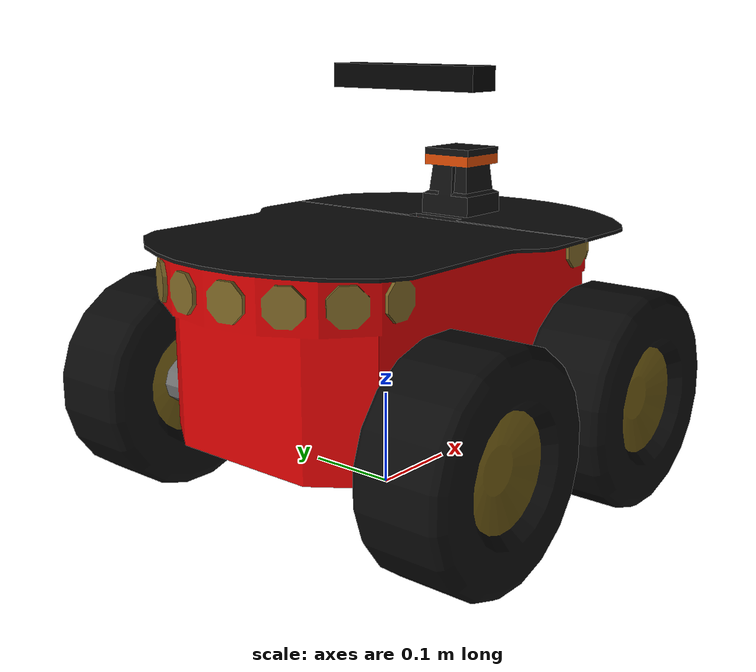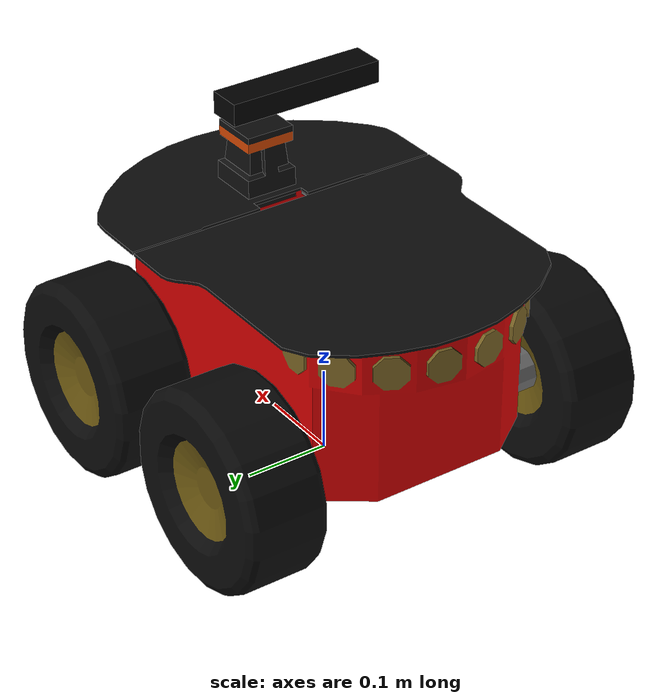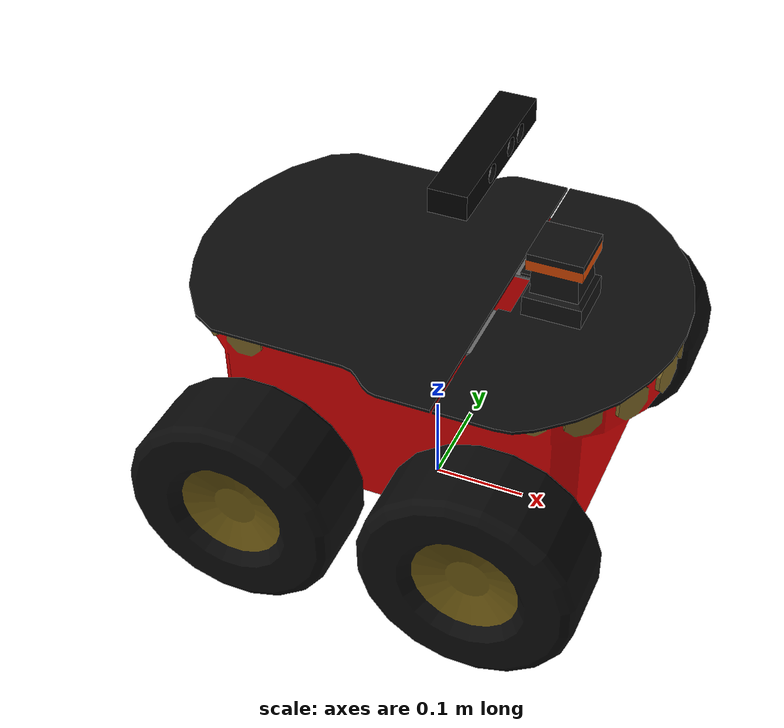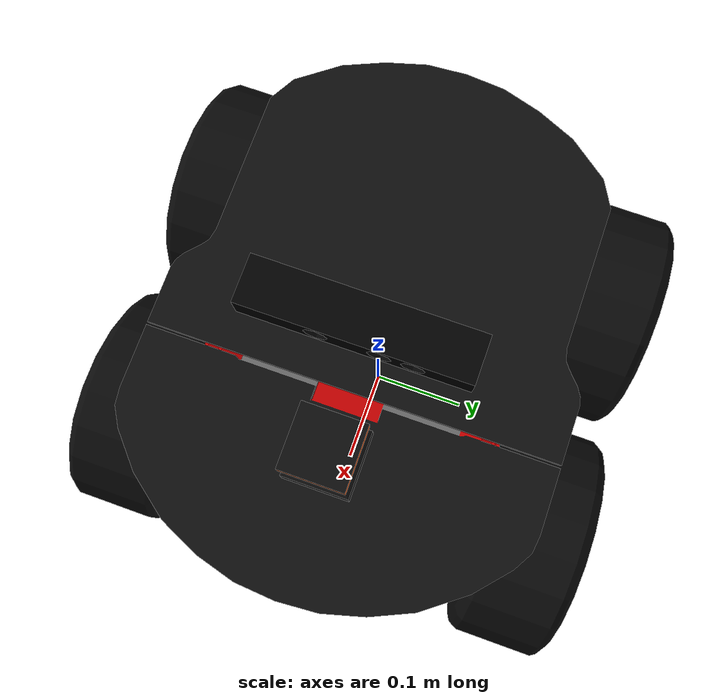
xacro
<?xml version="1.0"?>

<robot
  xmlns:sensor="http://playerstage.sourceforge.net/gazebo/xmlschema/#sensor"
  xmlns:controller="http://playerstage.sourceforge.net/gazebo/xmlschema/#controller"
  xmlns:interface="http://playerstage.sourceforge.net/gazebo/xmlschema/#interface"
  xmlns:xacro="http://ros.org/wiki/xacro"
  name="pioneer3at">

  <xacro:include filename="$(find p3at_description)/urdf/pioneer3at_body.xacro"/>
  <xacro:include filename="$(find p3at_description)/urdf/hokuyo_utm30lx.urdf.xacro"/>
  <xacro:include filename="$(find p3at_description)/urdf/asus_camera.urdf.xacro" />

  <xacro:hokuyo_utm30lx name="hokuyo" parent="base_link" ros_topic="hokuyo" update_rate="30" ray_count="1040" min_angle="130" max_angle="-130" >
    <origin xyz="0.13 0 0.32" rpy="0 0 0"/>
  </xacro:hokuyo_utm30lx>

  <xacro:asus_camera name="camera" parent="base_link">
	                <origin xyz="0.065 0.0 0.43" rpy="0 0 0"/>
  </xacro:asus_camera>
</robot>

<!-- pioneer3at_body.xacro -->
<robot xmlns:sensor="http://playerstage.sourceforge.net/gazebo/xmlschema/#sensor"
  xmlns:controller="http://playerstage.sourceforge.net/gazebo/xmlschema/#controller"
  xmlns:interface="http://playerstage.sourceforge.net/gazebo/xmlschema/#interface"
  xmlns:xacro="http://ros.org/wiki/xacro"
  >

  <!-- Chassis -->
  <link name="base_link">
    <inertial>
      <mass value="14.0"/>
      <origin xyz="0 0 0.177"/>
      <inertia ixx="0.14711667" ixy="0.0" ixz="0.0"
        iyy="0.334951167" iyz="0.0"
        izz="0.3978345"/>
    </inertial>
    <visual name="base_visual">
      <origin xyz="0 0 0.18" rpy="0 0 0"/>
      <geometry name="pioneer_geom">
        <mesh filename="package://p3at_description/meshes/p3at_meshes/chassis.dae"/>
      </geometry>
    </visual>
    <collision>
      <origin xyz="0 0 0.18" rpy="0 0 0"/>
      <geometry>
        <box size="0.501 0.3 0.19"/>
      </geometry>
    </collision>
  </link>

  <link name="p3at_front_left_wheel">
    <inertial>
      <mass value="1.5"/>
      <origin xyz="0 0 0"/>
      <inertia ixx="0.005240625" ixy="0" ixz="0"
        iyy="0.005240625" iyz="0" izz="0.009075"/>
    </inertial>
    <visual name="visual">
      <origin xyz="0 0 0" rpy="0 0 0"/>
      <geometry name="geom">
        <mesh filename="package://p3at_description/meshes/p3at_meshes/wheel.dae"/>
      </geometry>
    </visual>
    <collision>
      <origin xyz="0 0 0" rpy="0 0 0"/>
      <geometry>
        <cylinder radius="0.110" length="0.075"/>
      </geometry>
    </collision>
  </link>

  <joint name="p3at_front_left_wheel_joint" type="continuous">
    <axis xyz="0 0 -1"/>
    <limit effort="100" velocity="100" />
    <joint_properties damping="0.7"/>
    <origin xyz="0.125 0.2010 0.11" rpy="1.5707 0 0"/>
    <parent link="base_link"/>
    <child link="p3at_front_left_wheel"/>
  </joint>

  <link name="p3at_front_right_wheel">
    <inertial>
      <mass value="1.5"/>
      <origin xyz="0 0 0"/>
      <inertia ixx="0.005240625" ixy="0" ixz="0"
        iyy="0.005240625" iyz="0" izz="0.009075"/>
    </inertial>
    <visual name="visual">
      <origin xyz="0 0 0" rpy="0 0 0"/>
      <geometry name="geom">
        <mesh filename="package://p3at_description/meshes/p3at_meshes/wheel.dae"/>
      </geometry>
    </visual>
    <collision>
      <origin xyz="0 0 0" rpy="0 0 0"/>
      <geometry>
        <cylinder radius="0.110" length="0.075"/>
      </geometry>
    </collision>
  </link>

  <joint name="p3at_front_right_wheel_joint" type="continuous">
    <axis xyz="0 0 -1"/>
    <limit effort="100" velocity="100" />
    <joint_properties damping="0.7"/>
    <origin xyz="0.125 -0.2010 0.11" rpy="1.5707 0 0"/>
    <parent link="base_link"/>
    <child link="p3at_front_right_wheel"/>
  </joint>

  <link name="p3at_rear_left_wheel">
    <inertial>
      <mass value="1.5"/>
      <origin xyz="0 0 0"/>
      <inertia ixx="0.005240625" ixy="0" ixz="0"
        iyy="0.005240625" iyz="0" izz="0.009075"/>
    </inertial>
    <visual name="visual">
      <origin xyz="0 0 0" rpy="0 0 0"/>
      <geometry name="geom">
        <mesh filename="package://p3at_description/meshes/p3at_meshes/wheel.dae"/>
      </geometry>
    </visual>
    <collision>
      <origin xyz="0 0 0" rpy="0 0 0"/>
      <geometry>
        <cylinder radius="0.110" length="0.075"/>
      </geometry>
    </collision>
  </link>

  <joint name="p3at_rear_left_wheel_joint" type="continuous">
    <axis xyz="0 0 -1"/>
    <limit effort="100" velocity="100" />
    <joint_properties damping="0.7"/>
    <origin xyz="-0.125 0.2010 0.11" rpy="1.5707 0 0"/>
    <parent link="base_link"/>
    <child link="p3at_rear_left_wheel"/>
  </joint>

  <link name="p3at_rear_right_wheel">
    <inertial>
      <mass value="1.5"/>
      <origin xyz="0 0 0"/>
      <inertia ixx="0.005240625" ixy="0" ixz="0"
        iyy="0.005240625" iyz="0" izz="0.009075"/>
    </inertial>
    <visual name="visual">
      <origin xyz="0 0 0" rpy="0 0 0"/>
      <geometry name="geom">
        <mesh filename="package://p3at_description/meshes/p3at_meshes/wheel.dae"/>
      </geometry>
    </visual>
    <collision>
      <origin xyz="0 0 0" rpy="0 0 0"/>
      <geometry>
        <cylinder radius="0.110" length="0.075"/>
      </geometry>
    </collision>
  </link>

  <joint name="p3at_rear_right_wheel_joint" type="continuous">
    <axis xyz="0 0 -1"/>
    <limit effort="100" velocity="100" />
    <joint_properties damping="0.7"/>
    <origin xyz="-0.125 -0.2010 0.11" rpy="1.5707 0 0"/>
    <parent link="base_link"/>
    <child link="p3at_rear_right_wheel"/>
  </joint>

  <gazebo>
    <plugin name="skid_steer_drive_controller" filename="libgazebo_ros_skid_steer_drive.so">
      <updateRate>100.0</updateRate>
      <robotNamespace>$(arg robot_name)</robotNamespace>
      <leftFrontJoint>p3at_front_left_wheel_joint</leftFrontJoint>
      <rightFrontJoint>p3at_front_right_wheel_joint</rightFrontJoint>
      <leftRearJoint>p3at_rear_left_wheel_joint</leftRearJoint>
      <rightRearJoint>p3at_rear_right_wheel_joint</rightRearJoint>
      <wheelSeparation>0.4</wheelSeparation>
      <wheelDiameter>0.215</wheelDiameter>
      <robotBaseFrame>base_link</robotBaseFrame>
      <torque>200</torque>
      <commandTopic>cmd_vel</commandTopic>
      <odometryTopic>odom</odometryTopic>
      <odometryFrame>odom</odometryFrame>
      <broadcastTF>true</broadcastTF>
    </plugin>
  </gazebo>

</robot>

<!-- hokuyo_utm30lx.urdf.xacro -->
<robot xmlns:xacro="http://ros.org/wiki/xacro">
    <xacro:property name="M_PI" value="3.1415926535897931" />

    <xacro:macro name="hokuyo_utm30lx" params="name parent *origin ros_topic update_rate ray_count min_angle max_angle">
      <joint name="${name}_joint" type="fixed">
        <xacro:insert_block name="origin" />
        <parent link="${parent}"/>
        <child link="${name}_frame"/>
      </joint>

      <link name="${name}_frame">
        <inertial>
          <mass value="0.270" />
          <origin xyz="0 0 0" rpy="0 0 0" />
          <inertia ixx="2.632e-4" ixy="0" ixz="0" iyy="2.632e-4" iyz="0" izz="1.62e-4" />
        </inertial>
        <visual>
          <origin xyz="0 0 0" rpy="0 0 0" />
          <geometry>
          <mesh filename="package://p3at_description/meshes/hokuyo_utm30lx/hokuyo_utm_30lx$(optenv TEST_SELF_FILTER).dae"/>
        </geometry>
        </visual>
        <collision>
          <origin xyz="0 0 -0.0115" rpy="0 0 0" />
          <geometry>
          <box size="0.058 0.058 0.087" />
        </geometry>
        </collision>
      </link>

      <gazebo reference="${name}_frame">
        <sensor type="ray" name="${name}">
          <always_on>true</always_on>
          <update_rate>${update_rate}</update_rate>
          <pose>0 0 0 0 0 0</pose>
          <visualize>false</visualize>
          <ray>
            <scan>
              <horizontal>
                <samples>${ray_count}</samples>
                <resolution>1</resolution>
                <min_angle>${min_angle * M_PI/180}</min_angle>
                <max_angle>${max_angle * M_PI/180}</max_angle>
              </horizontal>
            </scan>
            <range>
              <min>0.08</min>
              <max>30.0</max>
              <resolution>0.01</resolution>
            </range>
          </ray>
          <plugin name="gazebo_ros_${name}_controller" filename="libgazebo_ros_laser.so">
            <gaussianNoise>0.005</gaussianNoise>
            <alwaysOn>true</alwaysOn>
            <updateRate>${update_rate}</updateRate>
            <topicName>${ros_topic}</topicName>
            <frameName>${name}_frame</frameName>
          </plugin>
        </sensor>
      </gazebo>

    </xacro:macro>
  </robot>

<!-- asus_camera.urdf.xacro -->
<robot xmlns:xacro="http://www.ros.org/wiki/xacro">
    <xacro:property name="M_PI" value="3.1415926535897931" />

    <!--
     The asus_camera_model macro only adds the model, it does not also add
     the openni gazebo plugin. See the 'asus_camera' macro below for that
    -->
    <xacro:macro name="asus_camera_model" params="name parent *origin">
      <joint name="${name}_joint" type="fixed">
        <xacro:insert_block name="origin" />
        <parent link="${parent}"/>
        <child link="${name}_link"/>
      </joint>

      <link name="${name}_link">
        <inertial>
          <mass value="0.200" />
          <origin xyz="0 0 0" rpy="0 0 0" />
          <inertia ixx="5.8083e-4" ixy="0" ixz="0" iyy="3.0833e-5" iyz="0" izz="5.9083e-4" />
        </inertial>
        <visual>
          <origin xyz="0 0 0" rpy="0 0 0" />
          <geometry>
            <mesh filename="package://p3at_description/meshes/asus_camera/asus_camera_simple.dae"/>
          </geometry>
        </visual>
        <collision>
          <origin xyz="0 0 0" rpy="0 0 0" />
          <geometry>
            <mesh filename="package://p3at_description/meshes/asus_camera/asus_camera_simple.dae"/>
          </geometry>
        </collision>

      </link>

      <joint name="${name}_depth_joint" type="fixed">
        <origin xyz="0.0 0.049 0.0" rpy="0 0 0" />
        <parent link="${name}_link" />
        <child link="${name}_depth_frame"/>
      </joint>

      <link name="${name}_depth_frame"/>

      <joint name="${name}_depth_optical_joint" type="fixed">
        <origin xyz="0 0 0" rpy="${-M_PI/2} 0.0 ${-M_PI/2}" />
        <parent link="${name}_depth_frame" />
        <child link="${name}_depth_optical_frame"/>
      </joint>

      <link name="${name}_depth_optical_frame"/>

      <joint name="${name}_rgb_joint" type="fixed">
        <origin xyz="0.0 0.022 0.0" rpy="0 0 0" />
        <parent link="${name}_link" />
        <child link="${name}_rgb_frame"/>
      </joint>

      <link name="${name}_rgb_frame"/>

      <joint name="${name}_rgb_optical_joint" type="fixed">
        <origin xyz="0 0 0" rpy="${-M_PI/2} 0.0 ${-M_PI/2}" />
        <parent link="${name}_rgb_frame" />
        <child link="${name}_rgb_optical_frame"/>
      </joint>

      <link name="${name}_rgb_optical_frame"/>
    </xacro:macro>

    <!--
     The asus_camera macro only adds the model, and also adds
     the openni gazebo plugin.
    -->
    <xacro:macro name="asus_camera" params="name parent *origin">
      <xacro:asus_camera_model name="${name}" parent="${parent}">
        <xacro:insert_block name="origin" />
      </xacro:asus_camera_model>

      <!-- ASUS Xtion PRO camera for simulation -->
      <gazebo reference="${name}_depth_frame">
        <sensor type="depth" name="${name}">
          <update_rate>20</update_rate>
          <camera>
            <horizontal_fov>${62.8 * M_PI/180.0}</horizontal_fov>
            <image>
              <format>R8G8B8</format>
              <width>640</width>
              <height>480</height>
            </image>
            <clip>
              <near>0.5</near>
              <far>9</far>
            </clip>
          </camera>
          <plugin name="${name}_camera_controller" filename="libgazebo_ros_openni_kinect.so">
            <imageTopicName>${name}/rgb/image_raw</imageTopicName>
            <cameraInfoTopicName>${name}/rgb/camera_info</cameraInfoTopicName>
            <depthImageTopicName>${name}/depth/image_raw</depthImageTopicName>
            <depthImageCameraInfoTopicName>${name}/depth/camera_info</depthImageCameraInfoTopicName>
            <pointCloudTopicName>${name}/depth/points</pointCloudTopicName>
            <frameName>${name}_depth_optical_frame</frameName>
          </plugin>
        </sensor>
      </gazebo>
    </xacro:macro>
  </robot>
